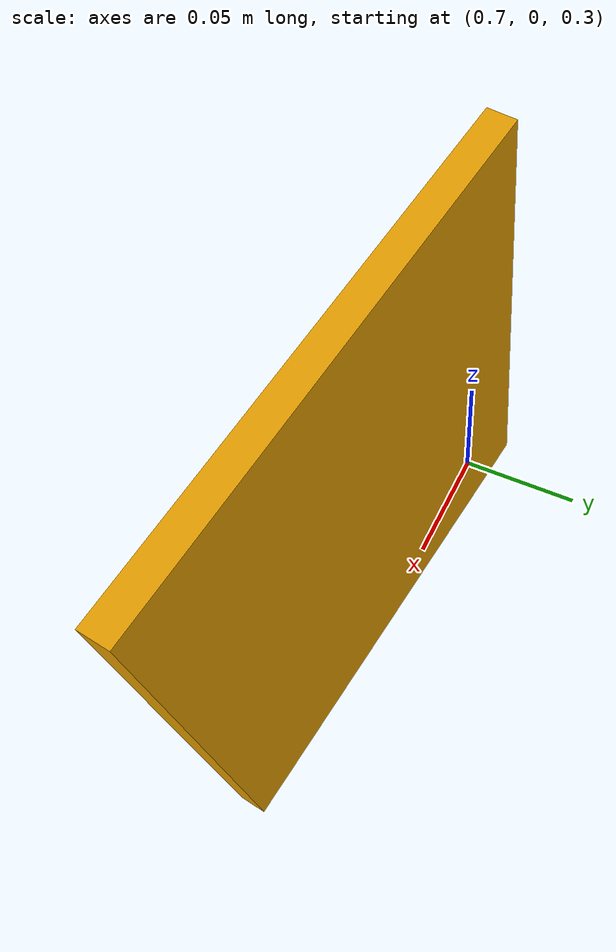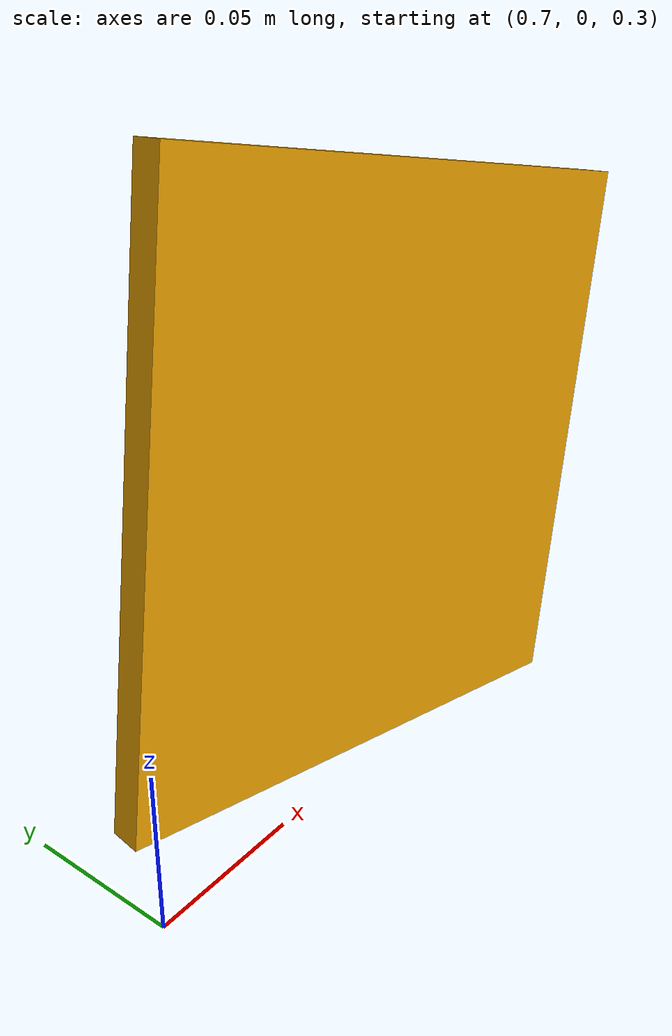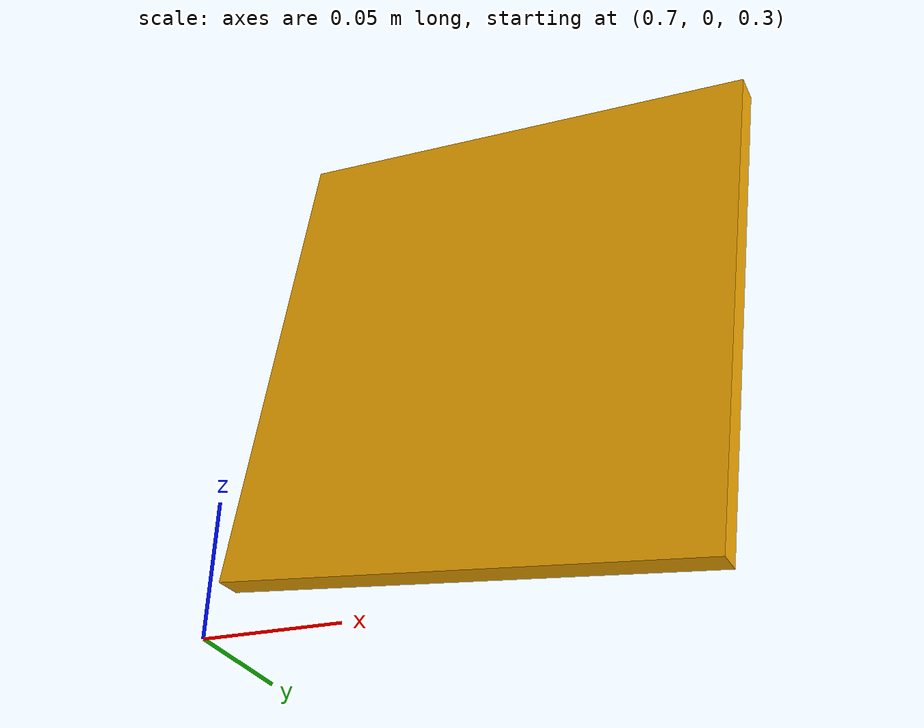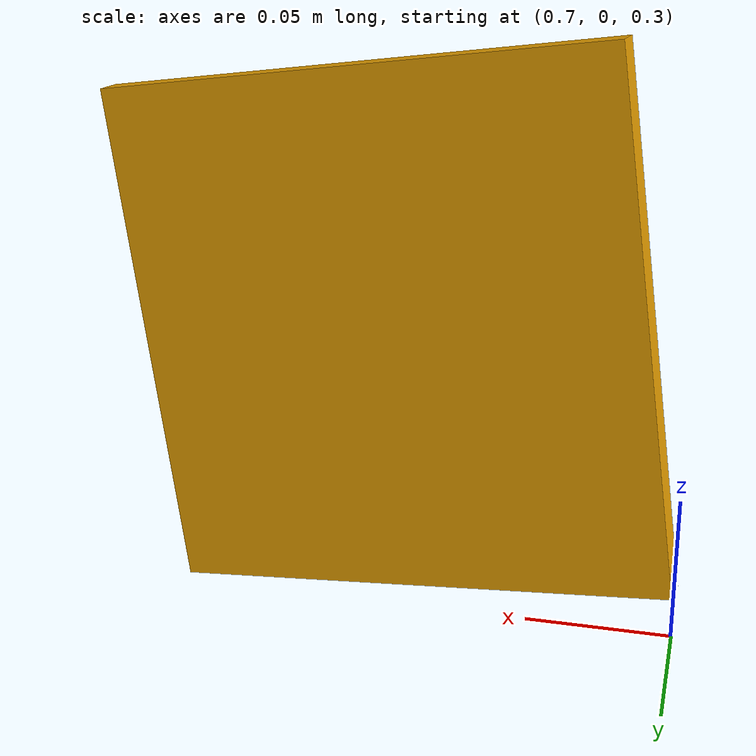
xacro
<?xml version='1.0'?>
<robot name="artag" xmlns:xacro="http://www.ros.org/wiki/xacro">
<link name="artag">
        <collision name="collision_tag">
                <origin xyz="0.8 0 0.4" rpy="1.707 1.707 0" />
                <geometry>
                         <box size="0.5 0.5 0.5" />
                </geometry>
        </collision>

	<visual name="tag_visual">
                <origin xyz="0.8 0 0.4" rpy="1.707 1.707 0" />
                <geometry>
			<mesh filename= "$(find gazebo_bot)/ar_tag_blender/AR_tag1/ar_tag.dae"/>
                </geometry>
        </visual>

        <inertial>
                <mass value="1.0" />
                <origin xyz="0.8 0  0.0001" rpy="1.707 1.707 0"/>
                <inertia ixx="0.0001" ixy="0.0" ixz="0.0"
                         iyy="0.0001" iyz="0.0"
                         izz="0.0001" />
        </inertial>
</link>
</robot>
